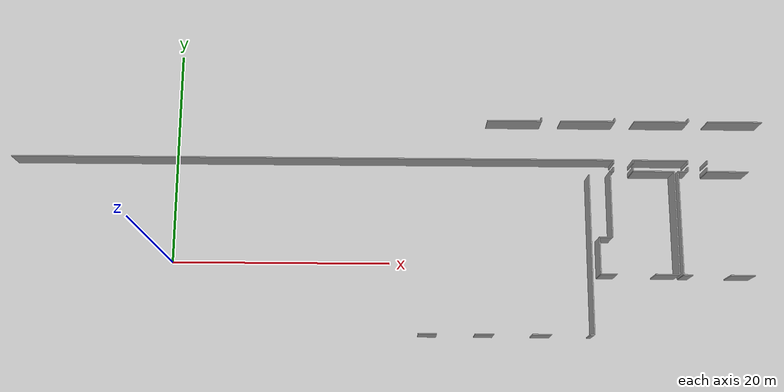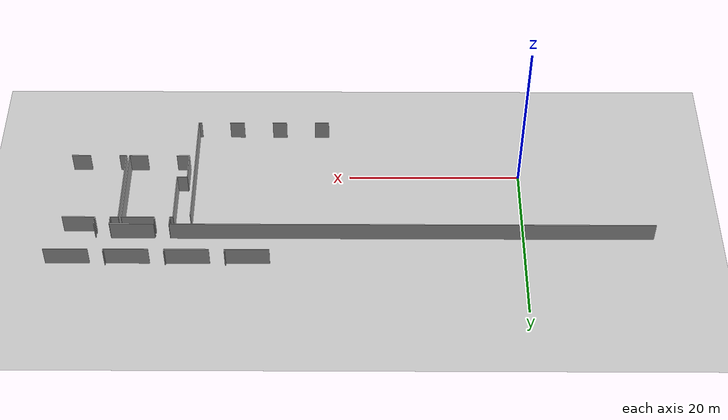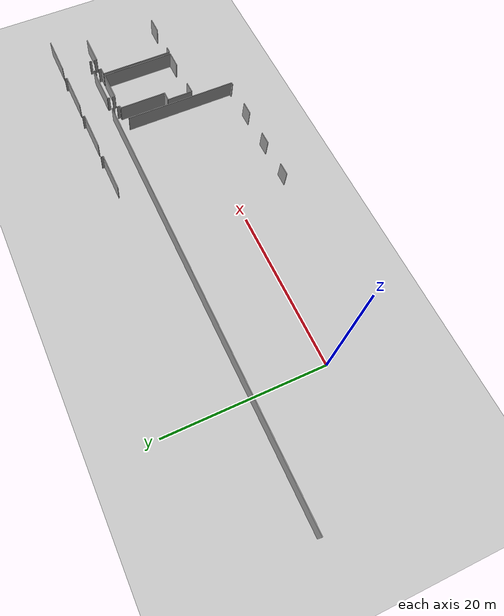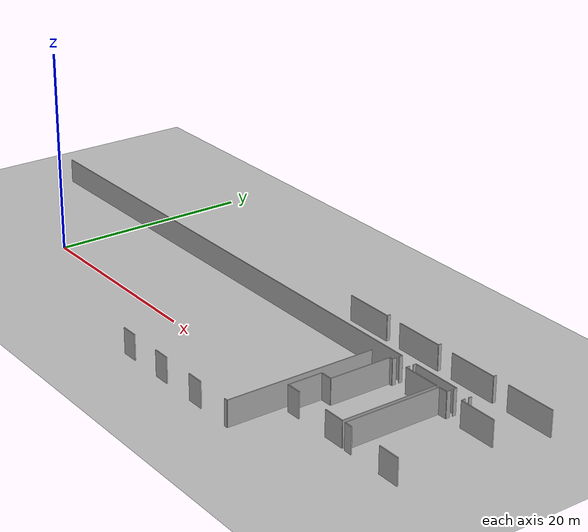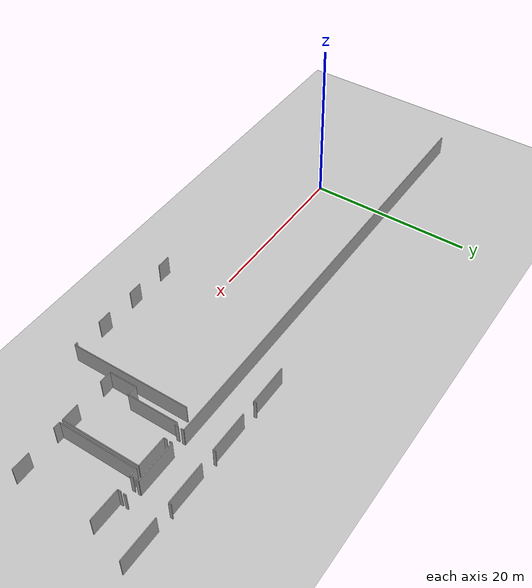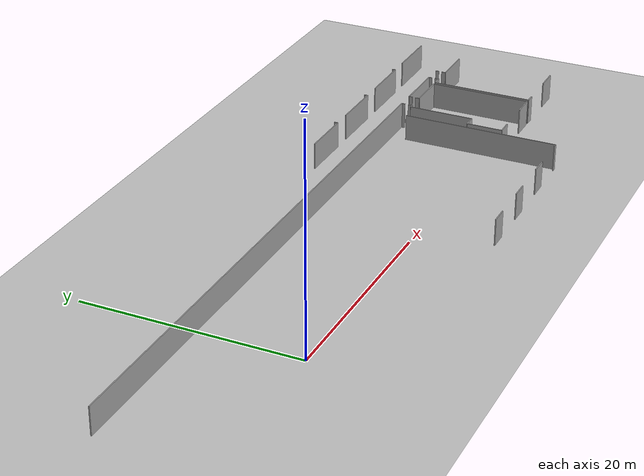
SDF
<sdf version="1.6">
 <world name="default">
  <model name="ground_plane">
   <static>1</static>
   <link name="link">
    <collision name="collision">
     <geometry><plane><normal>0 0 1</normal><size>100 100</size></plane></geometry>
     <surface><friction><ode><mu>100</mu><mu2>50</mu2></ode></friction></surface>
    </collision>
    <visual name="visual">
     <cast_shadows>0</cast_shadows>
     <geometry><plane><normal>0 0 1</normal><size>100 100</size></plane></geometry>
     <material>
      <script><uri>file://media/materials/scripts/gazebo.material</uri><name>Gazebo/Grey</name></script>
     </material>
    </visual>
   </link>
  </model>
  <model name="0510032197_A_40_1_105">
   <static>1</static>
   <link name="Wall_220">
    <collision name="Wall_220_Collision">
     <geometry><box><size>9.60917144346 0.1 2.5</size></box></geometry>
     <pose>4.80458572173 0 1.25 0 0 0</pose>
    </collision>
    <visual name="Wall_220_Visual">
     <pose>4.80458572173 0 1.25 0 0 0</pose>
     <geometry><box><size>9.60917144346 0.1 2.5</size></box></geometry>
     <material>
      <script><uri>file://media/materials/scripts/gazebo.material</uri><name>Gazebo/Grey</name></script>
      <ambient>1 1 1 1</ambient>
     </material>
    </visual>
    <pose>112.023538682 -25.3727169893 0 0 0 1.57079632679</pose>
   </link>
   <link name="Wall_221">
    <collision name="Wall_221_Collision">
     <geometry><box><size>0.910026817829 0.1 2.5</size></box></geometry>
     <pose>0.455013408915 0 1.25 0 0 0</pose>
    </collision>
    <visual name="Wall_221_Visual">
     <pose>0.455013408915 0 1.25 0 0 0</pose>
     <geometry><box><size>0.910026817829 0.1 2.5</size></box></geometry>
     <material>
      <script><uri>file://media/materials/scripts/gazebo.material</uri><name>Gazebo/Grey</name></script>
      <ambient>1 1 1 1</ambient>
     </material>
    </visual>
    <pose>112.023538682 -15.7635455458 0 0 0 0.0</pose>
   </link>
   <link name="Wall_222">
    <collision name="Wall_222_Collision">
     <geometry><box><size>0.398073183442 0.1 2.5</size></box></geometry>
     <pose>0.199036591721 0 1.25 0 0 0</pose>
    </collision>
    <visual name="Wall_222_Visual">
     <pose>0.199036591721 0 1.25 0 0 0</pose>
     <geometry><box><size>0.398073183442 0.1 2.5</size></box></geometry>
     <material>
      <script><uri>file://media/materials/scripts/gazebo.material</uri><name>Gazebo/Grey</name></script>
      <ambient>1 1 1 1</ambient>
     </material>
    </visual>
    <pose>112.9335655 -15.7635455458 0 0 0 1.57079632679</pose>
   </link>
   <link name="Wall_223">
    <collision name="Wall_223_Collision">
     <geometry><box><size>0.398073183442 0.1 2.5</size></box></geometry>
     <pose>0.199036591721 0 1.25 0 0 0</pose>
    </collision>
    <visual name="Wall_223_Visual">
     <pose>0.199036591721 0 1.25 0 0 0</pose>
     <geometry><box><size>0.398073183442 0.1 2.5</size></box></geometry>
     <material>
      <script><uri>file://media/materials/scripts/gazebo.material</uri><name>Gazebo/Grey</name></script>
      <ambient>1 1 1 1</ambient>
     </material>
    </visual>
    <pose>114.696424713 -15.3654723624 0 0 0 -1.57079632679</pose>
   </link>
   <link name="Wall_224">
    <collision name="Wall_224_Collision">
     <geometry><box><size>3.7875417837 0.1 2.5</size></box></geometry>
     <pose>1.89377089185 0 1.25 0 0 0</pose>
    </collision>
    <visual name="Wall_224_Visual">
     <pose>1.89377089185 0 1.25 0 0 0</pose>
     <geometry><box><size>3.7875417837 0.1 2.5</size></box></geometry>
     <material>
      <script><uri>file://media/materials/scripts/gazebo.material</uri><name>Gazebo/Grey</name></script>
      <ambient>1 1 1 1</ambient>
     </material>
    </visual>
    <pose>114.696424713 -15.7635455458 0 0 0 0.0</pose>
   </link>
   <link name="Wall_226">
    <collision name="Wall_226_Collision">
     <geometry><box><size>2.20770472426 0.1 2.5</size></box></geometry>
     <pose>1.10385236213 0 1.25 0 0 0</pose>
    </collision>
    <visual name="Wall_226_Visual">
     <pose>1.10385236213 0 1.25 0 0 0</pose>
     <geometry><box><size>2.20770472426 0.1 2.5</size></box></geometry>
     <material>
      <script><uri>file://media/materials/scripts/gazebo.material</uri><name>Gazebo/Grey</name></script>
      <ambient>1 1 1 1</ambient>
     </material>
    </visual>
    <pose>118.483966497 -25.3938153764 0 0 0 3.14159265359</pose>
   </link>
   <link name="Wall_227">
    <collision name="Wall_227_Collision">
     <geometry><box><size>0.84546976411 0.1 2.5</size></box></geometry>
     <pose>0.422734882055 0 1.25 0 0 0</pose>
    </collision>
    <visual name="Wall_227_Visual">
     <pose>0.422734882055 0 1.25 0 0 0</pose>
     <geometry><box><size>0.84546976411 0.1 2.5</size></box></geometry>
     <material>
      <script><uri>file://media/materials/scripts/gazebo.material</uri><name>Gazebo/Grey</name></script>
      <ambient>1 1 1 1</ambient>
     </material>
    </visual>
    <pose>112.868745154 -25.3938153764 0 0 0 3.11663543051</pose>
   </link>
   <link name="Wall_228">
    <collision name="Wall_228_Collision">
     <geometry><box><size>3.40561013739 0.1 2.5</size></box></geometry>
     <pose>1.7028050687 0 1.25 0 0 0</pose>
    </collision>
    <visual name="Wall_228_Visual">
     <pose>1.7028050687 0 1.25 0 0 0</pose>
     <geometry><box><size>3.40561013739 0.1 2.5</size></box></geometry>
     <material>
      <script><uri>file://media/materials/scripts/gazebo.material</uri><name>Gazebo/Grey</name></script>
      <ambient>1 1 1 1</ambient>
     </material>
    </visual>
    <pose>104.564750442 -25.3761486547 0 0 0 1.57079632679</pose>
   </link>
   <link name="Wall_229">
    <collision name="Wall_229_Collision">
     <geometry><box><size>1.18786461445 0.1 2.5</size></box></geometry>
     <pose>0.593932307223 0 1.25 0 0 0</pose>
    </collision>
    <visual name="Wall_229_Visual">
     <pose>0.593932307223 0 1.25 0 0 0</pose>
     <geometry><box><size>1.18786461445 0.1 2.5</size></box></geometry>
     <material>
      <script><uri>file://media/materials/scripts/gazebo.material</uri><name>Gazebo/Grey</name></script>
      <ambient>1 1 1 1</ambient>
     </material>
    </visual>
    <pose>104.564750442 -21.9705385173 0 0 0 0.0</pose>
   </link>
   <link name="Wall_230">
    <collision name="Wall_230_Collision">
     <geometry><box><size>6.20038383813 0.1 2.5</size></box></geometry>
     <pose>3.10019191906 0 1.25 0 0 0</pose>
    </collision>
    <visual name="Wall_230_Visual">
     <pose>3.10019191906 0 1.25 0 0 0</pose>
     <geometry><box><size>6.20038383813 0.1 2.5</size></box></geometry>
     <material>
      <script><uri>file://media/materials/scripts/gazebo.material</uri><name>Gazebo/Grey</name></script>
      <ambient>1 1 1 1</ambient>
     </material>
    </visual>
    <pose>105.752615056 -21.9705385173 0 0 0 1.57079632679</pose>
   </link>
   <link name="Wall_231">
    <collision name="Wall_231_Collision">
     <geometry><box><size>0.346216906671 0.1 2.5</size></box></geometry>
     <pose>0.173108453336 0 1.25 0 0 0</pose>
    </collision>
    <visual name="Wall_231_Visual">
     <pose>0.173108453336 0 1.25 0 0 0</pose>
     <geometry><box><size>0.346216906671 0.1 2.5</size></box></geometry>
     <material>
      <script><uri>file://media/materials/scripts/gazebo.material</uri><name>Gazebo/Grey</name></script>
      <ambient>1 1 1 1</ambient>
     </material>
    </visual>
    <pose>105.752615056 -15.7701546791 0 0 0 0.0</pose>
   </link>
   <link name="Wall_232">
    <collision name="Wall_232_Collision">
     <geometry><box><size>0.395658307808 0.1 2.5</size></box></geometry>
     <pose>0.197829153904 0 1.25 0 0 0</pose>
    </collision>
    <visual name="Wall_232_Visual">
     <pose>0.197829153904 0 1.25 0 0 0</pose>
     <geometry><box><size>0.395658307808 0.1 2.5</size></box></geometry>
     <material>
      <script><uri>file://media/materials/scripts/gazebo.material</uri><name>Gazebo/Grey</name></script>
      <ambient>1 1 1 1</ambient>
     </material>
    </visual>
    <pose>106.098831963 -15.7701546791 0 0 0 1.57079632679</pose>
   </link>
   <link name="Wall_233">
    <collision name="Wall_233_Collision">
     <geometry><box><size>0.394768616785 0.1 2.5</size></box></geometry>
     <pose>0.197384308392 0 1.25 0 0 0</pose>
    </collision>
    <visual name="Wall_233_Visual">
     <pose>0.197384308392 0 1.25 0 0 0</pose>
     <geometry><box><size>0.394768616785 0.1 2.5</size></box></geometry>
     <material>
      <script><uri>file://media/materials/scripts/gazebo.material</uri><name>Gazebo/Grey</name></script>
      <ambient>1 1 1 1</ambient>
     </material>
    </visual>
    <pose>107.878468206 -15.3744963713 0 0 0 -1.57079632679</pose>
   </link>
   <link name="Wall_234">
    <collision name="Wall_234_Collision">
     <geometry><box><size>3.7853811055 0.1 2.5</size></box></geometry>
     <pose>1.89269055275 0 1.25 0 0 0</pose>
    </collision>
    <visual name="Wall_234_Visual">
     <pose>1.89269055275 0 1.25 0 0 0</pose>
     <geometry><box><size>3.7853811055 0.1 2.5</size></box></geometry>
     <material>
      <script><uri>file://media/materials/scripts/gazebo.material</uri><name>Gazebo/Grey</name></script>
      <ambient>1 1 1 1</ambient>
     </material>
    </visual>
    <pose>107.878468206 -15.7692649881 0 0 0 0.0</pose>
   </link>
   <link name="Wall_235">
    <collision name="Wall_235_Collision">
     <geometry><box><size>9.58756466147 0.1 2.5</size></box></geometry>
     <pose>4.79378233074 0 1.25 0 0 0</pose>
    </collision>
    <visual name="Wall_235_Visual">
     <pose>4.79378233074 0 1.25 0 0 0</pose>
     <geometry><box><size>9.58756466147 0.1 2.5</size></box></geometry>
     <material>
      <script><uri>file://media/materials/scripts/gazebo.material</uri><name>Gazebo/Grey</name></script>
      <ambient>1 1 1 1</ambient>
     </material>
    </visual>
    <pose>111.663849312 -15.7692649881 0 0 0 -1.57079632679</pose>
   </link>
   <link name="Wall_236">
    <collision name="Wall_236_Collision">
     <geometry><box><size>2.16322017311 0.1 2.5</size></box></geometry>
     <pose>1.08161008655 0 1.25 0 0 0</pose>
    </collision>
    <visual name="Wall_236_Visual">
     <pose>1.08161008655 0 1.25 0 0 0</pose>
     <geometry><box><size>2.16322017311 0.1 2.5</size></box></geometry>
     <material>
      <script><uri>file://media/materials/scripts/gazebo.material</uri><name>Gazebo/Grey</name></script>
      <ambient>1 1 1 1</ambient>
     </material>
    </visual>
    <pose>111.663849312 -25.3568296496 0 0 0 3.14159265359</pose>
   </link>
   <link name="Wall_237">
    <collision name="Wall_237_Collision">
     <geometry><box><size>1.48476580975 0.1 2.5</size></box></geometry>
     <pose>0.742382904877 0 1.25 0 0 0</pose>
    </collision>
    <visual name="Wall_237_Visual">
     <pose>0.742382904877 0 1.25 0 0 0</pose>
     <geometry><box><size>1.48476580975 0.1 2.5</size></box></geometry>
     <material>
      <script><uri>file://media/materials/scripts/gazebo.material</uri><name>Gazebo/Grey</name></script>
      <ambient>1 1 1 1</ambient>
     </material>
    </visual>
    <pose>106.049390562 -25.3568296496 0 0 0 -3.12858080344</pose>
   </link>
   <link name="Wall_247">
    <collision name="Wall_247_Collision">
     <geometry><box><size>14.7006189708 0.1 2.5</size></box></geometry>
     <pose>7.35030948538 0 1.25 0 0 0</pose>
    </collision>
    <visual name="Wall_247_Visual">
     <pose>7.35030948538 0 1.25 0 0 0</pose>
     <geometry><box><size>14.7006189708 0.1 2.5</size></box></geometry>
     <material>
      <script><uri>file://media/materials/scripts/gazebo.material</uri><name>Gazebo/Grey</name></script>
      <ambient>1 1 1 1</ambient>
     </material>
    </visual>
    <pose>103.797074188 -16.1299711486 0 0 0 -1.57079632679</pose>
   </link>
   <link name="Wall_248">
    <collision name="Wall_248_Collision">
     <geometry><box><size>0.363502332261 0.1 2.5</size></box></geometry>
     <pose>0.181751166131 0 1.25 0 0 0</pose>
    </collision>
    <visual name="Wall_248_Visual">
     <pose>0.181751166131 0 1.25 0 0 0</pose>
     <geometry><box><size>0.363502332261 0.1 2.5</size></box></geometry>
     <material>
      <script><uri>file://media/materials/scripts/gazebo.material</uri><name>Gazebo/Grey</name></script>
      <ambient>1 1 1 1</ambient>
     </material>
    </visual>
    <pose>103.797074188 -30.8305901193 0 0 0 3.14159265359</pose>
   </link>
   <link name="Wall_249">
    <collision name="Wall_249_Collision">
     <geometry><box><size>1.71316361418 0.1 2.5</size></box></geometry>
     <pose>0.85658180709 0 1.25 0 0 0</pose>
    </collision>
    <visual name="Wall_249_Visual">
     <pose>0.85658180709 0 1.25 0 0 0</pose>
     <geometry><box><size>1.71316361418 0.1 2.5</size></box></geometry>
     <material>
      <script><uri>file://media/materials/scripts/gazebo.material</uri><name>Gazebo/Grey</name></script>
      <ambient>1 1 1 1</ambient>
     </material>
    </visual>
    <pose>100.015633142 -30.8305901193 0 0 0 3.14159265359</pose>
   </link>
   <link name="Wall_250">
    <collision name="Wall_250_Collision">
     <geometry><box><size>1.68596448862 0.1 2.5</size></box></geometry>
     <pose>0.842982244309 0 1.25 0 0 0</pose>
    </collision>
    <visual name="Wall_250_Visual">
     <pose>0.842982244309 0 1.25 0 0 0</pose>
     <geometry><box><size>1.68596448862 0.1 2.5</size></box></geometry>
     <material>
      <script><uri>file://media/materials/scripts/gazebo.material</uri><name>Gazebo/Grey</name></script>
      <ambient>1 1 1 1</ambient>
     </material>
    </visual>
    <pose>94.863432428 -30.8305901193 0 0 0 3.14159265359</pose>
   </link>
   <link name="Wall_251">
    <collision name="Wall_251_Collision">
     <geometry><box><size>1.6807534412 0.1 2.5</size></box></geometry>
     <pose>0.840376720599 0 1.25 0 0 0</pose>
    </collision>
    <visual name="Wall_251_Visual">
     <pose>0.840376720599 0 1.25 0 0 0</pose>
     <geometry><box><size>1.6807534412 0.1 2.5</size></box></geometry>
     <material>
      <script><uri>file://media/materials/scripts/gazebo.material</uri><name>Gazebo/Grey</name></script>
      <ambient>1 1 1 1</ambient>
     </material>
    </visual>
    <pose>89.773637184 -30.8305901193 0 0 0 3.14159265359</pose>
   </link>
   <link name="Wall_500">
    <collision name="Wall_500_Collision">
     <geometry><box><size>5.03920995437 0.1 2.5</size></box></geometry>
     <pose>2.51960497719 0 1.25 0 0 0</pose>
    </collision>
    <visual name="Wall_500_Visual">
     <pose>2.51960497719 0 1.25 0 0 0</pose>
     <geometry><box><size>5.03920995437 0.1 2.5</size></box></geometry>
     <material>
      <script><uri>file://media/materials/scripts/gazebo.material</uri><name>Gazebo/Grey</name></script>
      <ambient>1 1 1 1</ambient>
     </material>
    </visual>
    <pose>94.533102861 -10.9982333278 0 0 0 0.0</pose>
   </link>
   <link name="Wall_501">
    <collision name="Wall_501_Collision">
     <geometry><box><size>0.337701292594 0.1 2.5</size></box></geometry>
     <pose>0.168850646297 0 1.25 0 0 0</pose>
    </collision>
    <visual name="Wall_501_Visual">
     <pose>0.168850646297 0 1.25 0 0 0</pose>
     <geometry><box><size>0.337701292594 0.1 2.5</size></box></geometry>
     <material>
      <script><uri>file://media/materials/scripts/gazebo.material</uri><name>Gazebo/Grey</name></script>
      <ambient>1 1 1 1</ambient>
     </material>
    </visual>
    <pose>99.5723128154 -10.9982333278 0 0 0 1.57079632679</pose>
   </link>
   <link name="Wall_503">
    <collision name="Wall_503_Collision">
     <geometry><box><size>5.04543779153 0.1 2.5</size></box></geometry>
     <pose>2.52271889577 0 1.25 0 0 0</pose>
    </collision>
    <visual name="Wall_503_Visual">
     <pose>2.52271889577 0 1.25 0 0 0</pose>
     <geometry><box><size>5.04543779153 0.1 2.5</size></box></geometry>
     <material>
      <script><uri>file://media/materials/scripts/gazebo.material</uri><name>Gazebo/Grey</name></script>
      <ambient>1 1 1 1</ambient>
     </material>
    </visual>
    <pose>101.347373505 -10.9951829586 0 0 0 0.0</pose>
   </link>
   <link name="Wall_504">
    <collision name="Wall_504_Collision">
     <geometry><box><size>0.31850938624 0.1 2.5</size></box></geometry>
     <pose>0.15925469312 0 1.25 0 0 0</pose>
    </collision>
    <visual name="Wall_504_Visual">
     <pose>0.15925469312 0 1.25 0 0 0</pose>
     <geometry><box><size>0.31850938624 0.1 2.5</size></box></geometry>
     <material>
      <script><uri>file://media/materials/scripts/gazebo.material</uri><name>Gazebo/Grey</name></script>
      <ambient>1 1 1 1</ambient>
     </material>
    </visual>
    <pose>106.392811297 -10.9951829586 0 0 0 1.57079632679</pose>
   </link>
   <link name="Wall_506">
    <collision name="Wall_506_Collision">
     <geometry><box><size>5.0473442723 0.1 2.5</size></box></geometry>
     <pose>2.52367213615 0 1.25 0 0 0</pose>
    </collision>
    <visual name="Wall_506_Visual">
     <pose>2.52367213615 0 1.25 0 0 0</pose>
     <geometry><box><size>5.0473442723 0.1 2.5</size></box></geometry>
     <material>
      <script><uri>file://media/materials/scripts/gazebo.material</uri><name>Gazebo/Grey</name></script>
      <ambient>1 1 1 1</ambient>
     </material>
    </visual>
    <pose>108.183632227 -10.9949287612 0 0 0 0.0</pose>
   </link>
   <link name="Wall_507">
    <collision name="Wall_507_Collision">
     <geometry><box><size>0.31850938624 0.1 2.5</size></box></geometry>
     <pose>0.15925469312 0 1.25 0 0 0</pose>
    </collision>
    <visual name="Wall_507_Visual">
     <pose>0.15925469312 0 1.25 0 0 0</pose>
     <geometry><box><size>0.31850938624 0.1 2.5</size></box></geometry>
     <material>
      <script><uri>file://media/materials/scripts/gazebo.material</uri><name>Gazebo/Grey</name></script>
      <ambient>1 1 1 1</ambient>
     </material>
    </visual>
    <pose>113.230976499 -10.9949287612 0 0 0 1.57079632679</pose>
   </link>
   <link name="Wall_509">
    <collision name="Wall_509_Collision">
     <geometry><box><size>5.05598698509 0.1 2.5</size></box></geometry>
     <pose>2.52799349255 0 1.25 0 0 0</pose>
    </collision>
    <visual name="Wall_509_Visual">
     <pose>2.52799349255 0 1.25 0 0 0</pose>
     <geometry><box><size>5.05598698509 0.1 2.5</size></box></geometry>
     <material>
      <script><uri>file://media/materials/scripts/gazebo.material</uri><name>Gazebo/Grey</name></script>
      <ambient>1 1 1 1</ambient>
     </material>
    </visual>
    <pose>115.005274597 -10.9862860484 0 0 0 0.0</pose>
   </link>
   <link name="Wall_527">
    <collision name="Wall_527_Collision">
     <geometry><box><size>0.322576545203 0.1 2.5</size></box></geometry>
     <pose>0.161288272601 0 1.25 0 0 0</pose>
    </collision>
    <visual name="Wall_527_Visual">
     <pose>0.161288272601 0 1.25 0 0 0</pose>
     <geometry><box><size>0.322576545203 0.1 2.5</size></box></geometry>
     <material>
      <script><uri>file://media/materials/scripts/gazebo.material</uri><name>Gazebo/Grey</name></script>
      <ambient>1 1 1 1</ambient>
     </material>
    </visual>
    <pose>114.724386431 -14.7301058732 0 0 0 -1.57079632679</pose>
   </link>
   <link name="Wall_528">
    <collision name="Wall_528_Collision">
     <geometry><box><size>0.322576545203 0.1 2.5</size></box></geometry>
     <pose>0.161288272601 0 1.25 0 0 0</pose>
    </collision>
    <visual name="Wall_528_Visual">
     <pose>0.161288272601 0 1.25 0 0 0</pose>
     <geometry><box><size>0.322576545203 0.1 2.5</size></box></geometry>
     <material>
      <script><uri>file://media/materials/scripts/gazebo.material</uri><name>Gazebo/Grey</name></script>
      <ambient>1 1 1 1</ambient>
     </material>
    </visual>
    <pose>112.936107475 -15.0526824184 0 0 0 1.57079632679</pose>
   </link>
   <link name="Wall_529">
    <collision name="Wall_529_Collision">
     <geometry><box><size>5.03984544796 0.1 2.5</size></box></geometry>
     <pose>2.51992272398 0 1.25 0 0 0</pose>
    </collision>
    <visual name="Wall_529_Visual">
     <pose>2.51992272398 0 1.25 0 0 0</pose>
     <geometry><box><size>5.03984544796 0.1 2.5</size></box></geometry>
     <material>
      <script><uri>file://media/materials/scripts/gazebo.material</uri><name>Gazebo/Grey</name></script>
      <ambient>1 1 1 1</ambient>
     </material>
    </visual>
    <pose>112.936107475 -14.7301058732 0 0 0 3.14159265359</pose>
   </link>
   <link name="Wall_530">
    <collision name="Wall_530_Collision">
     <geometry><box><size>0.322576545203 0.1 2.5</size></box></geometry>
     <pose>0.161288272601 0 1.25 0 0 0</pose>
    </collision>
    <visual name="Wall_530_Visual">
     <pose>0.161288272601 0 1.25 0 0 0</pose>
     <geometry><box><size>0.322576545203 0.1 2.5</size></box></geometry>
     <material>
      <script><uri>file://media/materials/scripts/gazebo.material</uri><name>Gazebo/Grey</name></script>
      <ambient>1 1 1 1</ambient>
     </material>
    </visual>
    <pose>107.896262027 -14.7301058732 0 0 0 -1.57079632679</pose>
   </link>
   <link name="Wall_531">
    <collision name="Wall_531_Collision">
     <geometry><box><size>0.338082588747 0.1 2.5</size></box></geometry>
     <pose>0.169041294373 0 1.25 0 0 0</pose>
    </collision>
    <visual name="Wall_531_Visual">
     <pose>0.169041294373 0 1.25 0 0 0</pose>
     <geometry><box><size>0.338082588747 0.1 2.5</size></box></geometry>
     <material>
      <script><uri>file://media/materials/scripts/gazebo.material</uri><name>Gazebo/Grey</name></script>
      <ambient>1 1 1 1</ambient>
     </material>
    </visual>
    <pose>106.114719302 -15.0526824184 0 0 0 1.57079632679</pose>
   </link>
   <link name="Wall_532">
    <collision name="Wall_532_Collision">
     <geometry><box><size>55.6145858488 0.1 2.5</size></box></geometry>
     <pose>27.8072929244 0 1.25 0 0 0</pose>
    </collision>
    <visual name="Wall_532_Visual">
     <pose>27.8072929244 0 1.25 0 0 0</pose>
     <geometry><box><size>55.6145858488 0.1 2.5</size></box></geometry>
     <material>
      <script><uri>file://media/materials/scripts/gazebo.material</uri><name>Gazebo/Grey</name></script>
      <ambient>1 1 1 1</ambient>
     </material>
    </visual>
    <pose>106.114719302 -14.7145998297 0 0 0 3.14159265359</pose>
   </link>
   <pose>-65.5 24.1613162343 0 0 0 0</pose>
  </model>
 </world>
</sdf>
